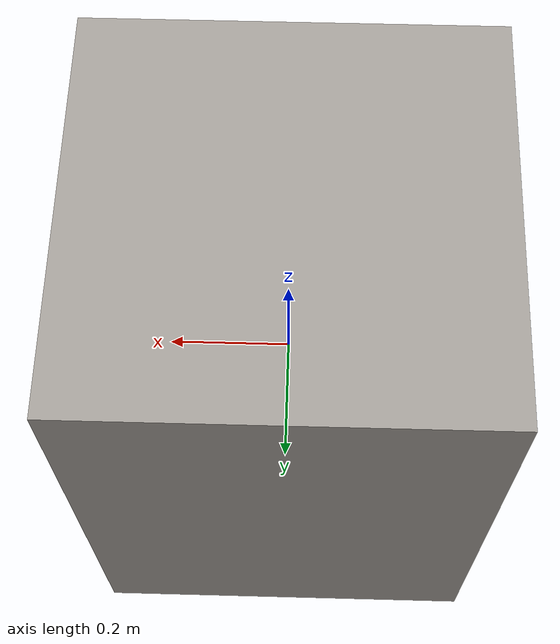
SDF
<?xml version="1.0"?>
<sdf version="1.6">
  <model name="dishwasher">
    <static>true</static>
    <link name="link">
      <collision name="col">
        <geometry>
          <box>
            <size>0.65 0.65 0.88</size>
          </box>
        </geometry>
      </collision>
      <visual name="vis">
        <geometry>
          <box>
            <size>0.65 0.65 0.88</size>
          </box>
        </geometry>
        <material>
          <ambient>0.62 0.6 0.58 1</ambient>
          <diffuse>0.62 0.6 0.58 1</diffuse>
        </material>
      </visual>
    </link>
  </model>
</sdf>
